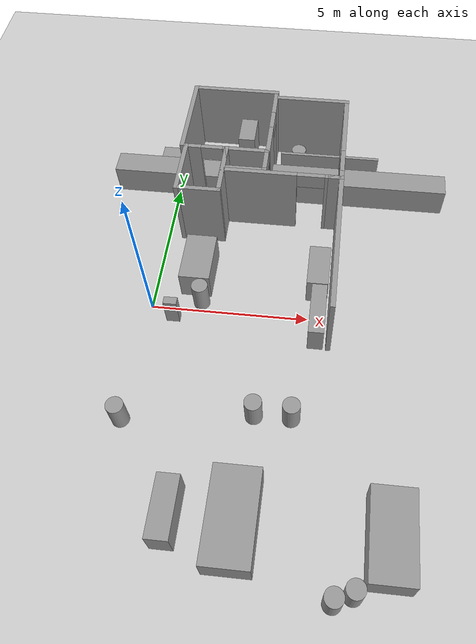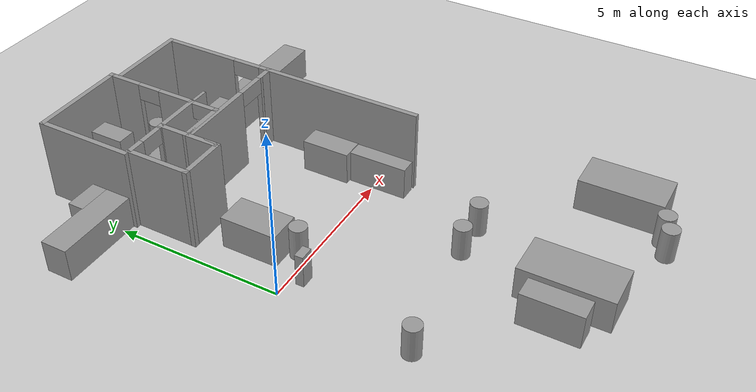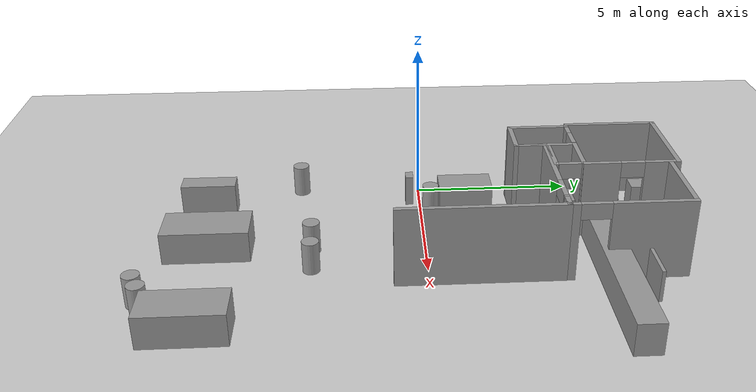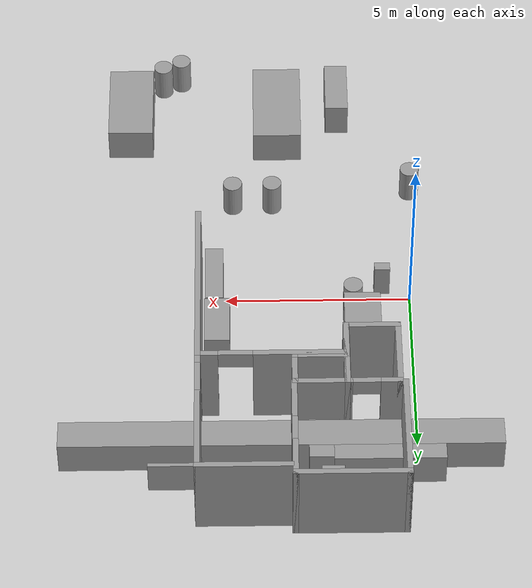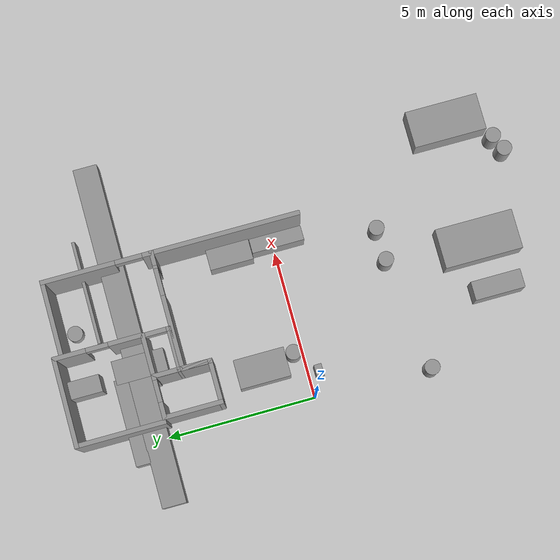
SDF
<sdf version="1.6">
 <world name="default">
  <model name="ground_plane">
   <static>1</static>
   <link name="link">
    <collision name="collision">
     <geometry><plane><normal>0 0 1</normal><size>100 100</size></plane></geometry>
     <surface><friction><ode><mu>100</mu><mu2>50</mu2></ode></friction></surface>
    </collision>
    <visual name="visual">
     <cast_shadows>0</cast_shadows>
     <geometry><plane><normal>0 0 1</normal><size>100 100</size></plane></geometry>
     <material>
      <script><uri>file://media/materials/scripts/gazebo.material</uri><name>Gazebo/Grey</name></script>
     </material>
    </visual>
   </link>
  </model>
  <model name="cma_L5">
   <pose>3.77502 1.45512 0 0 -0 0</pose>
   <link name="Wall_0">
    <collision name="Wall_0_Collision">
     <geometry><box><size>1 0.15 2.5</size></box></geometry>
     <pose>0 0 1.25 0 -0 0</pose>
    </collision>
    <visual name="Wall_0_Visual">
     <pose>0 0 1.25 0 -0 0</pose>
     <geometry><box><size>1 0.15 2.5</size></box></geometry>
     <material>
      <script><uri>file://media/materials/scripts/gazebo.material</uri><name>Gazebo/Grey</name></script>
      <ambient>1 1 1 1</ambient>
     </material>
    </visual>
    <pose>-1.925 2 0 0 -0 1.5708</pose>
   </link>
   <link name="Wall_1">
    <pose>0 2.425 0 0 -0 0</pose>
    <visual name="Wall_1_Visual_0">
     <pose>-0.7525 0 1.25 0 -0 0</pose>
     <geometry><box><size>2.495 0.15 2.5</size></box></geometry>
     <material>
      <script><uri>file://media/materials/scripts/gazebo.material</uri><name>Gazebo/Grey</name></script>
      <ambient>1 1 1 1</ambient>
     </material>
    </visual>
    <collision name="Wall_1_Collision_0">
     <geometry><box><size>2.495 0.15 2.5</size></box></geometry>
     <pose>-0.7525 0 1.25 0 -0 0</pose>
    </collision>
    <visual name="Wall_1_Visual_1">
     <pose>1.6975 0 1.25 0 -0 0</pose>
     <geometry><box><size>0.605 0.15 2.5</size></box></geometry>
     <material>
      <script><uri>file://media/materials/scripts/gazebo.material</uri><name>Gazebo/Grey</name></script>
      <ambient>1 1 1 1</ambient>
     </material>
    </visual>
    <collision name="Wall_1_Collision_1">
     <geometry><box><size>0.605 0.15 2.5</size></box></geometry>
     <pose>1.6975 0 1.25 0 -0 0</pose>
    </collision>
    <visual name="Wall_1_Visual_2">
     <pose>0.945 0 2.25 0 -0 0</pose>
     <geometry><box><size>0.9 0.15 0.5</size></box></geometry>
     <material>
      <script><uri>file://media/materials/scripts/gazebo.material</uri><name>Gazebo/Grey</name></script>
      <ambient>1 1 1 1</ambient>
     </material>
    </visual>
    <collision name="Wall_1_Collision_2">
     <geometry><box><size>0.9 0.15 0.5</size></box></geometry>
     <pose>0.945 0 2.25 0 -0 0</pose>
    </collision>
   </link>
   <link name="Wall_3">
    <collision name="Wall_3_Collision">
     <geometry><box><size>5 0.15 2.5</size></box></geometry>
     <pose>0 0 1.25 0 -0 0</pose>
    </collision>
    <visual name="Wall_3_Visual">
     <pose>0 0 1.25 0 -0 0</pose>
     <geometry><box><size>5 0.15 2.5</size></box></geometry>
     <material>
      <script><uri>file://media/materials/scripts/gazebo.material</uri><name>Gazebo/Grey</name></script>
      <ambient>1 1 1 1</ambient>
     </material>
    </visual>
    <pose>1.925 0 0 0 0 -1.5708</pose>
   </link>
   <static>1</static>
  </model>
  <model name="cma_dispensa">
   <pose>2.52584 4.40119 0 0 -0 0</pose>
   <link name="Wall_5">
    <collision name="Wall_5_Collision">
     <geometry><box><size>1 0.15 2.5</size></box></geometry>
     <pose>0 0 1.25 0 -0 0</pose>
    </collision>
    <visual name="Wall_5_Visual">
     <pose>0 0 1.25 0 -0 0</pose>
     <geometry><box><size>1 0.15 2.5</size></box></geometry>
     <material>
      <script><uri>file://media/materials/scripts/gazebo.material</uri><name>Gazebo/Grey</name></script>
      <ambient>1 1 1 1</ambient>
     </material>
    </visual>
    <pose>-0.675 0 0 0 -0 1.5708</pose>
   </link>
   <link name="Wall_6">
    <collision name="Wall_6_Collision">
     <geometry><box><size>1.5 0.15 2.5</size></box></geometry>
     <pose>0 0 1.25 0 -0 0</pose>
    </collision>
    <visual name="Wall_6_Visual">
     <pose>0 0 1.25 0 -0 0</pose>
     <geometry><box><size>1.5 0.15 2.5</size></box></geometry>
     <material>
      <script><uri>file://media/materials/scripts/gazebo.material</uri><name>Gazebo/Grey</name></script>
      <ambient>1 1 1 1</ambient>
     </material>
    </visual>
    <pose>0 0.425 0 0 -0 0</pose>
   </link>
   <link name="Wall_7">
    <pose>0.675 0 0 0 0 -1.5708</pose>
    <visual name="Wall_7_Visual_0">
     <pose>-0.4275 0 1.25 0 -0 0</pose>
     <geometry><box><size>0.145 0.15 2.5</size></box></geometry>
     <material>
      <script><uri>file://media/materials/scripts/gazebo.material</uri><name>Gazebo/Grey</name></script>
      <ambient>1 1 1 1</ambient>
     </material>
    </visual>
    <collision name="Wall_7_Collision_0">
     <geometry><box><size>0.145 0.15 2.5</size></box></geometry>
     <pose>-0.4275 0 1.25 0 -0 0</pose>
    </collision>
    <visual name="Wall_7_Visual_1">
     <pose>0.4225 0 1.25 0 -0 0</pose>
     <geometry><box><size>0.155 0.15 2.5</size></box></geometry>
     <material>
      <script><uri>file://media/materials/scripts/gazebo.material</uri><name>Gazebo/Grey</name></script>
      <ambient>1 1 1 1</ambient>
     </material>
    </visual>
    <collision name="Wall_7_Collision_1">
     <geometry><box><size>0.155 0.15 2.5</size></box></geometry>
     <pose>0.4225 0 1.25 0 -0 0</pose>
    </collision>
    <visual name="Wall_7_Visual_2">
     <pose>-0.005 0 2.25 0 -0 0</pose>
     <geometry><box><size>0.7 0.15 0.5</size></box></geometry>
     <material>
      <script><uri>file://media/materials/scripts/gazebo.material</uri><name>Gazebo/Grey</name></script>
      <ambient>1 1 1 1</ambient>
     </material>
    </visual>
    <collision name="Wall_7_Collision_2">
     <geometry><box><size>0.7 0.15 0.5</size></box></geometry>
     <pose>-0.005 0 2.25 0 -0 0</pose>
    </collision>
   </link>
   <link name="Wall_8">
    <collision name="Wall_8_Collision">
     <geometry><box><size>1.5 0.15 2.5</size></box></geometry>
     <pose>0 0 1.25 0 -0 0</pose>
    </collision>
    <visual name="Wall_8_Visual">
     <pose>0 0 1.25 0 -0 0</pose>
     <geometry><box><size>1.5 0.15 2.5</size></box></geometry>
     <material>
      <script><uri>file://media/materials/scripts/gazebo.material</uri><name>Gazebo/Grey</name></script>
      <ambient>1 1 1 1</ambient>
     </material>
    </visual>
    <pose>0 -0.425 0 0 -0 3.14159</pose>
   </link>
   <static>1</static>
  </model>
  <model name="cma_banheiro_e">
   <pose>1.18358 3.89879 0 0 -0 0</pose>
   <link name="Wall_10">
    <collision name="Wall_10_Collision">
     <geometry><box><size>1.5 0.15 2.5</size></box></geometry>
     <pose>0 0 1.25 0 -0 0</pose>
    </collision>
    <visual name="Wall_10_Visual">
     <pose>0 0 1.25 0 -0 0</pose>
     <geometry><box><size>1.5 0.15 2.5</size></box></geometry>
     <material>
      <script><uri>file://media/materials/scripts/gazebo.material</uri><name>Gazebo/Grey</name></script>
      <ambient>1 1 1 1</ambient>
     </material>
    </visual>
    <pose>0 -0.925 0 0 -0 3.14159</pose>
   </link>
   <link name="Wall_11">
    <collision name="Wall_11_Collision">
     <geometry><box><size>2 0.15 2.5</size></box></geometry>
     <pose>0 0 1.25 0 -0 0</pose>
    </collision>
    <visual name="Wall_11_Visual">
     <pose>0 0 1.25 0 -0 0</pose>
     <geometry><box><size>2 0.15 2.5</size></box></geometry>
     <material>
      <script><uri>file://media/materials/scripts/gazebo.material</uri><name>Gazebo/Grey</name></script>
      <ambient>1 1 1 1</ambient>
     </material>
    </visual>
    <pose>-0.675 0 0 0 -0 1.5708</pose>
   </link>
   <link name="Wall_12">
    <pose>0 0.925 0 0 -0 0</pose>
    <visual name="Wall_12_Visual_0">
     <pose>-0.4625 0 1.25 0 -0 0</pose>
     <geometry><box><size>0.575 0.15 2.5</size></box></geometry>
     <material>
      <script><uri>file://media/materials/scripts/gazebo.material</uri><name>Gazebo/Grey</name></script>
      <ambient>1 1 1 1</ambient>
     </material>
    </visual>
    <collision name="Wall_12_Collision_0">
     <geometry><box><size>0.575 0.15 2.5</size></box></geometry>
     <pose>-0.4625 0 1.25 0 -0 0</pose>
    </collision>
    <visual name="Wall_12_Visual_1">
     <pose>0.6475 0 1.25 0 -0 0</pose>
     <geometry><box><size>0.205 0.15 2.5</size></box></geometry>
     <material>
      <script><uri>file://media/materials/scripts/gazebo.material</uri><name>Gazebo/Grey</name></script>
      <ambient>1 1 1 1</ambient>
     </material>
    </visual>
    <collision name="Wall_12_Collision_1">
     <geometry><box><size>0.205 0.15 2.5</size></box></geometry>
     <pose>0.6475 0 1.25 0 -0 0</pose>
    </collision>
    <visual name="Wall_12_Visual_2">
     <pose>0.185 0 2.25 0 -0 0</pose>
     <geometry><box><size>0.72 0.15 0.5</size></box></geometry>
     <material>
      <script><uri>file://media/materials/scripts/gazebo.material</uri><name>Gazebo/Grey</name></script>
      <ambient>1 1 1 1</ambient>
     </material>
    </visual>
    <collision name="Wall_12_Collision_2">
     <geometry><box><size>0.72 0.15 0.5</size></box></geometry>
     <pose>0.185 0 2.25 0 -0 0</pose>
    </collision>
   </link>
   <link name="Wall_13">
    <collision name="Wall_13_Collision">
     <geometry><box><size>2 0.15 2.5</size></box></geometry>
     <pose>0 0 1.25 0 -0 0</pose>
    </collision>
    <visual name="Wall_13_Visual">
     <pose>0 0 1.25 0 -0 0</pose>
     <geometry><box><size>2 0.15 2.5</size></box></geometry>
     <material>
      <script><uri>file://media/materials/scripts/gazebo.material</uri><name>Gazebo/Grey</name></script>
      <ambient>1 1 1 1</ambient>
     </material>
    </visual>
    <pose>0.675 0 0 0 0 -1.5708</pose>
   </link>
   <static>1</static>
  </model>
  <model name="cma_qe">
   <pose>1.79922 6.30142 0 0 -0 0</pose>
   <link name="Wall_15">
    <collision name="Wall_15_Collision">
     <geometry><box><size>3 0.15 2.5</size></box></geometry>
     <pose>0 0 1.25 0 -0 0</pose>
    </collision>
    <visual name="Wall_15_Visual">
     <pose>0 0 1.25 0 -0 0</pose>
     <geometry><box><size>3 0.15 2.5</size></box></geometry>
     <material>
      <script><uri>file://media/materials/scripts/gazebo.material</uri><name>Gazebo/Grey</name></script>
      <ambient>1 1 1 1</ambient>
     </material>
    </visual>
    <pose>-1.425 0 0 0 -0 1.5708</pose>
   </link>
   <link name="Wall_16">
    <collision name="Wall_16_Collision">
     <geometry><box><size>3 0.15 2.5</size></box></geometry>
     <pose>0 0 1.25 0 -0 0</pose>
    </collision>
    <visual name="Wall_16_Visual">
     <pose>0 0 1.25 0 -0 0</pose>
     <geometry><box><size>3 0.15 2.5</size></box></geometry>
     <material>
      <script><uri>file://media/materials/scripts/gazebo.material</uri><name>Gazebo/Grey</name></script>
      <ambient>1 1 1 1</ambient>
     </material>
    </visual>
    <pose>0 1.425 0 0 -0 0</pose>
   </link>
   <link name="Wall_17">
    <pose>1.425 0 0 0 0 -1.5708</pose>
    <visual name="Wall_17_Visual_0">
     <pose>-0.945 0 1.25 0 -0 0</pose>
     <geometry><box><size>1.11 0.15 2.5</size></box></geometry>
     <material>
      <script><uri>file://media/materials/scripts/gazebo.material</uri><name>Gazebo/Grey</name></script>
      <ambient>1 1 1 1</ambient>
     </material>
    </visual>
    <collision name="Wall_17_Collision_0">
     <geometry><box><size>1.11 0.15 2.5</size></box></geometry>
     <pose>-0.945 0 1.25 0 -0 0</pose>
    </collision>
    <visual name="Wall_17_Visual_1">
     <pose>0.92 0 1.25 0 -0 0</pose>
     <geometry><box><size>1.16 0.15 2.5</size></box></geometry>
     <material>
      <script><uri>file://media/materials/scripts/gazebo.material</uri><name>Gazebo/Grey</name></script>
      <ambient>1 1 1 1</ambient>
     </material>
    </visual>
    <collision name="Wall_17_Collision_1">
     <geometry><box><size>1.16 0.15 2.5</size></box></geometry>
     <pose>0.92 0 1.25 0 -0 0</pose>
    </collision>
    <visual name="Wall_17_Visual_2">
     <pose>-0.025 0 2.25 0 -0 0</pose>
     <geometry><box><size>0.73 0.15 0.5</size></box></geometry>
     <material>
      <script><uri>file://media/materials/scripts/gazebo.material</uri><name>Gazebo/Grey</name></script>
      <ambient>1 1 1 1</ambient>
     </material>
    </visual>
    <collision name="Wall_17_Collision_2">
     <geometry><box><size>0.73 0.15 0.5</size></box></geometry>
     <pose>-0.025 0 2.25 0 -0 0</pose>
    </collision>
   </link>
   <static>1</static>
  </model>
  <model name="cma_area2">
   <pose>4.52275 5.67862 0 0 -0 0</pose>
   <link name="Wall_23">
    <collision name="Wall_23_Collision">
     <geometry><box><size>2.5 0.15 2.5</size></box></geometry>
     <pose>0 0 1.25 0 -0 0</pose>
    </collision>
    <visual name="Wall_23_Visual">
     <pose>0 0 1.25 0 -0 0</pose>
     <geometry><box><size>2.5 0.15 2.5</size></box></geometry>
     <material>
      <script><uri>file://media/materials/scripts/gazebo.material</uri><name>Gazebo/Grey</name></script>
      <ambient>1 1 1 1</ambient>
     </material>
    </visual>
    <pose>0 1.8 0 0 -0 0</pose>
   </link>
   <link name="Wall_24">
    <pose>1.175 0 0 0 0 -1.5708</pose>
    <visual name="Wall_24_Visual_0">
     <pose>-0.6425 0 1.25 0 -0 0</pose>
     <geometry><box><size>2.465 0.15 2.5</size></box></geometry>
     <material>
      <script><uri>file://media/materials/scripts/gazebo.material</uri><name>Gazebo/Grey</name></script>
      <ambient>1 1 1 1</ambient>
     </material>
    </visual>
    <collision name="Wall_24_Collision_0">
     <geometry><box><size>2.465 0.15 2.5</size></box></geometry>
     <pose>-0.6425 0 1.25 0 -0 0</pose>
    </collision>
    <visual name="Wall_24_Visual_1">
     <pose>1.6825 0 1.25 0 -0 0</pose>
     <geometry><box><size>0.385 0.15 2.5</size></box></geometry>
     <material>
      <script><uri>file://media/materials/scripts/gazebo.material</uri><name>Gazebo/Grey</name></script>
      <ambient>1 1 1 1</ambient>
     </material>
    </visual>
    <collision name="Wall_24_Collision_1">
     <geometry><box><size>0.385 0.15 2.5</size></box></geometry>
     <pose>1.6825 0 1.25 0 -0 0</pose>
    </collision>
    <visual name="Wall_24_Visual_2">
     <pose>1.04 0 2.25 0 -0 0</pose>
     <geometry><box><size>0.9 0.15 0.5</size></box></geometry>
     <material>
      <script><uri>file://media/materials/scripts/gazebo.material</uri><name>Gazebo/Grey</name></script>
      <ambient>1 1 1 1</ambient>
     </material>
    </visual>
    <collision name="Wall_24_Collision_2">
     <geometry><box><size>0.9 0.15 0.5</size></box></geometry>
     <pose>1.04 0 2.25 0 -0 0</pose>
    </collision>
   </link>
   <link name="Wall_25">
    <collision name="Wall_25_Collision">
     <geometry><box><size>0.5 0.15 2.5</size></box></geometry>
     <pose>0 0 1.25 0 -0 0</pose>
    </collision>
    <visual name="Wall_25_Visual">
     <pose>0 0 1.25 0 -0 0</pose>
     <geometry><box><size>0.5 0.15 2.5</size></box></geometry>
     <material>
      <script><uri>file://media/materials/scripts/gazebo.material</uri><name>Gazebo/Grey</name></script>
      <ambient>1 1 1 1</ambient>
     </material>
    </visual>
    <pose>1 -1.8 0 0 -0 3.14159</pose>
   </link>
   <static>1</static>
  </model>
  <model name="cma_picador_0">
   <link name="link_2">
    <pose>-0.7258 -1.69104 0 0 -0 0</pose>
    <inertial>
     <mass>0.104732</mass>
     <inertia>
      <ixx>0.00927906</ixx>
      <ixy>0</ixy>
      <ixz>0</ixz>
      <iyy>0.010243</iyy>
      <iyz>0</iyz>
      <izz>0.00206672</izz>
     </inertia>
    </inertial>
    <visual name="visual">
     <geometry><box><size>0.416688 0.25134 1</size></box></geometry>
     <material>
      <lighting>1</lighting>
      <script><uri>file://media/materials/scripts/gazebo.material</uri><name>Gazebo/Grey</name></script>
      <ambient>0.3 0.3 0.3 1</ambient>
      <diffuse>0.7 0.7 0.7 1</diffuse>
      <specular>0.01 0.01 0.01 1</specular>
      <emissive>0 0 0 1</emissive>
     </material>
    </visual>
    <collision name="collision">
     <geometry><box><size>0.416688 0.25134 1</size></box></geometry>
     <surface>
      <friction>
       <ode><mu>1</mu><mu2>1</mu2><fdir1>0 0 0</fdir1><slip1>0</slip1><slip2>0</slip2></ode>
       <torsional>
        <coefficient>1</coefficient>
        <patch_radius>0</patch_radius>
        <surface_radius>0</surface_radius>
        <use_patch_radius>1</use_patch_radius>
        <ode><slip>0</slip></ode>
       </torsional>
      </friction>
      <bounce><restitution_coefficient>0</restitution_coefficient><threshold>1e+06</threshold></bounce>
      <contact>
       <collide_without_contact>0</collide_without_contact>
       <collide_without_contact_bitmask>1</collide_without_contact_bitmask>
       <collide_bitmask>1</collide_bitmask>
       <ode>
        <soft_cfm>0</soft_cfm>
        <soft_erp>0.2</soft_erp>
        <kp>1e+13</kp>
        <kd>1</kd>
        <max_vel>0.01</max_vel>
        <min_depth>0</min_depth>
       </ode>
       <bullet>
        <split_impulse>1</split_impulse>
        <split_impulse_penetration_threshold>-0.01</split_impulse_penetration_threshold>
        <soft_cfm>0</soft_cfm>
        <soft_erp>0.2</soft_erp>
        <kp>1e+13</kp>
        <kd>1</kd>
       </bullet>
      </contact>
     </surface>
    </collision>
   </link>
   <static>0</static>
   <pose>1.47237 1.35976 0.500002 1e-06 2e-06 0.008786</pose>
  </model>
  <model name="cma_cesto">
   <link name="link_1">
    <pose>-0.329659 -1.55494 0 0 -0 0</pose>
    <inertial>
     <mass>0.267897</mass>
     <inertia>
      <ixx>0.0268102</ixx>
      <ixy>0</ixy>
      <ixz>0</ixz>
      <iyy>0.0268102</iyy>
      <iyz>0</iyz>
      <izz>0.00897111</izz>
     </inertia>
    </inertial>
    <visual name="visual">
     <geometry><cylinder><radius>0.258792</radius><length>1</length></cylinder></geometry>
     <material>
      <lighting>1</lighting>
      <script><uri>file://media/materials/scripts/gazebo.material</uri><name>Gazebo/Grey</name></script>
      <ambient>0.3 0.3 0.3 1</ambient>
      <diffuse>0.7 0.7 0.7 1</diffuse>
      <specular>0.01 0.01 0.01 1</specular>
      <emissive>0 0 0 1</emissive>
     </material>
    </visual>
    <collision name="collision">
     <geometry><cylinder><radius>0.258792</radius><length>1</length></cylinder></geometry>
     <surface>
      <friction>
       <ode><mu>1</mu><mu2>1</mu2><fdir1>0 0 0</fdir1><slip1>0</slip1><slip2>0</slip2></ode>
       <torsional>
        <coefficient>1</coefficient>
        <patch_radius>0</patch_radius>
        <surface_radius>0</surface_radius>
        <use_patch_radius>1</use_patch_radius>
        <ode><slip>0</slip></ode>
       </torsional>
      </friction>
      <bounce><restitution_coefficient>0</restitution_coefficient><threshold>1e+06</threshold></bounce>
      <contact>
       <collide_without_contact>0</collide_without_contact>
       <collide_without_contact_bitmask>1</collide_without_contact_bitmask>
       <collide_bitmask>1</collide_bitmask>
       <ode>
        <soft_cfm>0</soft_cfm>
        <soft_erp>0.2</soft_erp>
        <kp>1e+13</kp>
        <kd>1</kd>
        <max_vel>0.01</max_vel>
        <min_depth>0</min_depth>
       </ode>
       <bullet>
        <split_impulse>1</split_impulse>
        <split_impulse_penetration_threshold>-0.01</split_impulse_penetration_threshold>
        <soft_cfm>0</soft_cfm>
        <soft_erp>0.2</soft_erp>
        <kp>1e+13</kp>
        <kd>1</kd>
       </bullet>
      </contact>
     </surface>
    </collision>
   </link>
   <static>0</static>
   <pose>1.91098 1.85863 0.499992 0 0 -0.013205</pose>
  </model>
  <model name="cma_sofa_2_lugares">
   <link name="link_0">
    <pose>-0.034013 -0.039828 0 0 -0 0</pose>
    <inertial>
     <mass>1.66071</mass>
     <inertia>
      <ixx>0.538183</ixx>
      <ixy>0</ixy>
      <ixz>0</ixz>
      <iyy>0.270519</iyy>
      <iyz>0</iyz>
      <izz>0.531915</izz>
     </inertia>
    </inertial>
    <visual name="visual">
     <geometry><box><size>0.977147 1.69968 1</size></box></geometry>
     <material>
      <lighting>1</lighting>
      <script><uri>file://media/materials/scripts/gazebo.material</uri><name>Gazebo/Grey</name></script>
      <ambient>0.3 0.3 0.3 1</ambient>
      <diffuse>0.7 0.7 0.7 1</diffuse>
      <specular>0.01 0.01 0.01 1</specular>
      <emissive>0 0 0 1</emissive>
     </material>
    </visual>
    <collision name="collision">
     <geometry><box><size>0.977147 1.69968 1</size></box></geometry>
     <surface>
      <friction>
       <ode><mu>1</mu><mu2>1</mu2><fdir1>0 0 0</fdir1><slip1>0</slip1><slip2>0</slip2></ode>
       <torsional>
        <coefficient>1</coefficient>
        <patch_radius>0</patch_radius>
        <surface_radius>0</surface_radius>
        <use_patch_radius>1</use_patch_radius>
        <ode><slip>0</slip></ode>
       </torsional>
      </friction>
      <bounce><restitution_coefficient>0</restitution_coefficient><threshold>1e+06</threshold></bounce>
      <contact>
       <collide_without_contact>0</collide_without_contact>
       <collide_without_contact_bitmask>1</collide_without_contact_bitmask>
       <collide_bitmask>1</collide_bitmask>
       <ode>
        <soft_cfm>0</soft_cfm>
        <soft_erp>0.2</soft_erp>
        <kp>1e+13</kp>
        <kd>1</kd>
        <max_vel>0.01</max_vel>
        <min_depth>0</min_depth>
       </ode>
       <bullet>
        <split_impulse>1</split_impulse>
        <split_impulse_penetration_threshold>-0.01</split_impulse_penetration_threshold>
        <soft_cfm>0</soft_cfm>
        <soft_erp>0.2</soft_erp>
        <kp>1e+13</kp>
        <kd>1</kd>
       </bullet>
      </contact>
     </surface>
    </collision>
   </link>
   <static>0</static>
   <pose>1.36479 1.47304 0.499999 -0 -2e-06 0.000198</pose>
  </model>
  <model name="cma_sofa_ch2">
   <link name="link_0">
    <pose>7.54152 -9.06061 0.5 0 -0 0</pose>
    <inertial>
     <mass>3.05287</mass>
     <inertia><ixx>1.79053</ixx><ixy>0</ixy><ixz>0</ixz><iyy>0.647089</iyy><iyz>0</iyz><izz>1.92881</izz></inertia>
    </inertial>
    <visual name="visual">
     <geometry><box><size>1.24235 2.45729 1</size></box></geometry>
     <material>
      <lighting>1</lighting>
      <script><uri>file://media/materials/scripts/gazebo.material</uri><name>Gazebo/Grey</name></script>
      <ambient>0.3 0.3 0.3 1</ambient>
      <diffuse>0.7 0.7 0.7 1</diffuse>
      <specular>0.01 0.01 0.01 1</specular>
      <emissive>0 0 0 1</emissive>
     </material>
    </visual>
    <collision name="collision">
     <geometry><box><size>1.24235 2.45729 1</size></box></geometry>
     <surface>
      <friction>
       <ode><mu>1</mu><mu2>1</mu2><fdir1>0 0 0</fdir1><slip1>0</slip1><slip2>0</slip2></ode>
       <torsional>
        <coefficient>1</coefficient>
        <patch_radius>0</patch_radius>
        <surface_radius>0</surface_radius>
        <use_patch_radius>1</use_patch_radius>
        <ode><slip>0</slip></ode>
       </torsional>
      </friction>
      <bounce><restitution_coefficient>0</restitution_coefficient><threshold>1e+06</threshold></bounce>
      <contact>
       <collide_without_contact>0</collide_without_contact>
       <collide_without_contact_bitmask>1</collide_without_contact_bitmask>
       <collide_bitmask>1</collide_bitmask>
       <ode>
        <soft_cfm>0</soft_cfm>
        <soft_erp>0.2</soft_erp>
        <kp>1e+13</kp>
        <kd>1</kd>
        <max_vel>0.01</max_vel>
        <min_depth>0</min_depth>
       </ode>
       <bullet>
        <split_impulse>1</split_impulse>
        <split_impulse_penetration_threshold>-0.01</split_impulse_penetration_threshold>
        <soft_cfm>0</soft_cfm>
        <soft_erp>0.2</soft_erp>
        <kp>1e+13</kp>
        <kd>1</kd>
       </bullet>
      </contact>
     </surface>
    </collision>
   </link>
   <model name="cma_armarioL">
    <link name="link_0">
     <pose>3.66226 -6.16735 0.5 0 -0 0</pose>
     <inertial>
      <mass>1.04821</mass>
      <inertia>
       <ixx>0.330873</ixx>
       <ixy>0</ixy>
       <ixz>0</ixz>
       <iyy>0.121777</iyy>
       <iyz>0</iyz>
       <izz>0.277949</izz>
      </inertia>
     </inertial>
     <visual name="visual">
      <geometry><box><size>0.627792 1.66972 1</size></box></geometry>
      <material>
       <lighting>1</lighting>
       <script><uri>file://media/materials/scripts/gazebo.material</uri><name>Gazebo/Grey</name></script>
       <ambient>0.3 0.3 0.3 1</ambient>
       <diffuse>0.7 0.7 0.7 1</diffuse>
       <specular>0.01 0.01 0.01 1</specular>
       <emissive>0 0 0 1</emissive>
      </material>
     </visual>
     <collision name="collision">
      <geometry><box><size>0.627792 1.66972 1</size></box></geometry>
      <surface>
       <friction>
        <ode><mu>1</mu><mu2>1</mu2><fdir1>0 0 0</fdir1><slip1>0</slip1><slip2>0</slip2></ode>
        <torsional>
         <coefficient>1</coefficient>
         <patch_radius>0</patch_radius>
         <surface_radius>0</surface_radius>
         <use_patch_radius>1</use_patch_radius>
         <ode><slip>0</slip></ode>
        </torsional>
       </friction>
       <bounce><restitution_coefficient>0</restitution_coefficient><threshold>1e+06</threshold></bounce>
       <contact>
        <collide_without_contact>0</collide_without_contact>
        <collide_without_contact_bitmask>1</collide_without_contact_bitmask>
        <collide_bitmask>1</collide_bitmask>
        <ode>
         <soft_cfm>0</soft_cfm>
         <soft_erp>0.2</soft_erp>
         <kp>1e+13</kp>
         <kd>1</kd>
         <max_vel>0.01</max_vel>
         <min_depth>0</min_depth>
        </ode>
        <bullet>
         <split_impulse>1</split_impulse>
         <split_impulse_penetration_threshold>-0.01</split_impulse_penetration_threshold>
         <soft_cfm>0</soft_cfm>
         <soft_erp>0.2</soft_erp>
         <kp>1e+13</kp>
         <kd>1</kd>
        </bullet>
       </contact>
      </surface>
     </collision>
    </link>
    <static>0</static>
    <pose>-1.91803 -2.92011 0.5 0 -0 0</pose>
   </model>
   <model name="cma_cesto">
    <link name="link_1">
     <pose>-0.329659 -1.55494 0 0 -0 0</pose>
     <inertial>
      <mass>0.267897</mass>
      <inertia>
       <ixx>0.0268102</ixx>
       <ixy>0</ixy>
       <ixz>0</ixz>
       <iyy>0.0268102</iyy>
       <iyz>0</iyz>
       <izz>0.00897111</izz>
      </inertia>
     </inertial>
     <visual name="visual">
      <geometry><cylinder><radius>0.258792</radius><length>1</length></cylinder></geometry>
      <material>
       <lighting>1</lighting>
       <script><uri>file://media/materials/scripts/gazebo.material</uri><name>Gazebo/Grey</name></script>
       <ambient>0.3 0.3 0.3 1</ambient>
       <diffuse>0.7 0.7 0.7 1</diffuse>
       <specular>0.01 0.01 0.01 1</specular>
       <emissive>0 0 0 1</emissive>
      </material>
     </visual>
     <collision name="collision">
      <geometry><cylinder><radius>0.258792</radius><length>1</length></cylinder></geometry>
      <surface>
       <friction>
        <ode><mu>1</mu><mu2>1</mu2><fdir1>0 0 0</fdir1><slip1>0</slip1><slip2>0</slip2></ode>
        <torsional>
         <coefficient>1</coefficient>
         <patch_radius>0</patch_radius>
         <surface_radius>0</surface_radius>
         <use_patch_radius>1</use_patch_radius>
         <ode><slip>0</slip></ode>
        </torsional>
       </friction>
       <bounce><restitution_coefficient>0</restitution_coefficient><threshold>1e+06</threshold></bounce>
       <contact>
        <collide_without_contact>0</collide_without_contact>
        <collide_without_contact_bitmask>1</collide_without_contact_bitmask>
        <collide_bitmask>1</collide_bitmask>
        <ode>
         <soft_cfm>0</soft_cfm>
         <soft_erp>0.2</soft_erp>
         <kp>1e+13</kp>
         <kd>1</kd>
         <max_vel>0.01</max_vel>
         <min_depth>0</min_depth>
        </ode>
        <bullet>
         <split_impulse>1</split_impulse>
         <split_impulse_penetration_threshold>-0.01</split_impulse_penetration_threshold>
         <soft_cfm>0</soft_cfm>
         <soft_erp>0.2</soft_erp>
         <kp>1e+13</kp>
         <kd>1</kd>
        </bullet>
       </contact>
      </surface>
     </collision>
    </link>
    <static>0</static>
    <pose>6.97935 -8.88509 0.5 0 -0 0</pose>
   </model>
   <model name="cma_cesto_0">
    <link name="link_1">
     <pose>-0.329659 -1.55494 0 0 -0 0</pose>
     <inertial>
      <mass>0.267897</mass>
      <inertia>
       <ixx>0.0268102</ixx>
       <ixy>0</ixy>
       <ixz>0</ixz>
       <iyy>0.0268102</iyy>
       <iyz>0</iyz>
       <izz>0.00897111</izz>
      </inertia>
     </inertial>
     <visual name="visual">
      <geometry><cylinder><radius>0.258792</radius><length>1</length></cylinder></geometry>
      <material>
       <lighting>1</lighting>
       <script><uri>file://media/materials/scripts/gazebo.material</uri><name>Gazebo/Grey</name></script>
       <ambient>0.3 0.3 0.3 1</ambient>
       <diffuse>0.7 0.7 0.7 1</diffuse>
       <specular>0.01 0.01 0.01 1</specular>
       <emissive>0 0 0 1</emissive>
      </material>
     </visual>
     <collision name="collision">
      <geometry><cylinder><radius>0.258792</radius><length>1</length></cylinder></geometry>
      <surface>
       <friction>
        <ode><mu>1</mu><mu2>1</mu2><fdir1>0 0 0</fdir1><slip1>0</slip1><slip2>0</slip2></ode>
        <torsional>
         <coefficient>1</coefficient>
         <patch_radius>0</patch_radius>
         <surface_radius>0</surface_radius>
         <use_patch_radius>1</use_patch_radius>
         <ode><slip>0</slip></ode>
        </torsional>
       </friction>
       <bounce><restitution_coefficient>0</restitution_coefficient><threshold>1e+06</threshold></bounce>
       <contact>
        <collide_without_contact>0</collide_without_contact>
        <collide_without_contact_bitmask>1</collide_without_contact_bitmask>
        <collide_bitmask>1</collide_bitmask>
        <ode>
         <soft_cfm>0</soft_cfm>
         <soft_erp>0.2</soft_erp>
         <kp>1e+13</kp>
         <kd>1</kd>
         <max_vel>0.01</max_vel>
         <min_depth>0</min_depth>
        </ode>
        <bullet>
         <split_impulse>1</split_impulse>
         <split_impulse_penetration_threshold>-0.01</split_impulse_penetration_threshold>
         <soft_cfm>0</soft_cfm>
         <soft_erp>0.2</soft_erp>
         <kp>1e+13</kp>
         <kd>1</kd>
        </bullet>
       </contact>
      </surface>
     </collision>
    </link>
    <static>0</static>
    <pose>6.4663 -9.11922 0.5 0 -0 0</pose>
   </model>
   <model name="cma_cesto_1">
    <link name="link_1">
     <pose>-0.329659 -1.55494 0 0 -0 0</pose>
     <inertial>
      <mass>0.267897</mass>
      <inertia>
       <ixx>0.0268102</ixx>
       <ixy>0</ixy>
       <ixz>0</ixz>
       <iyy>0.0268102</iyy>
       <iyz>0</iyz>
       <izz>0.00897111</izz>
      </inertia>
     </inertial>
     <visual name="visual">
      <geometry><cylinder><radius>0.258792</radius><length>1</length></cylinder></geometry>
      <material>
       <lighting>1</lighting>
       <script><uri>file://media/materials/scripts/gazebo.material</uri><name>Gazebo/Grey</name></script>
       <ambient>0.3 0.3 0.3 1</ambient>
       <diffuse>0.7 0.7 0.7 1</diffuse>
       <specular>0.01 0.01 0.01 1</specular>
       <emissive>0 0 0 1</emissive>
      </material>
     </visual>
     <collision name="collision">
      <geometry><cylinder><radius>0.258792</radius><length>1</length></cylinder></geometry>
      <surface>
       <friction>
        <ode><mu>1</mu><mu2>1</mu2><fdir1>0 0 0</fdir1><slip1>0</slip1><slip2>0</slip2></ode>
        <torsional>
         <coefficient>1</coefficient>
         <patch_radius>0</patch_radius>
         <surface_radius>0</surface_radius>
         <use_patch_radius>1</use_patch_radius>
         <ode><slip>0</slip></ode>
        </torsional>
       </friction>
       <bounce><restitution_coefficient>0</restitution_coefficient><threshold>1e+06</threshold></bounce>
       <contact>
        <collide_without_contact>0</collide_without_contact>
        <collide_without_contact_bitmask>1</collide_without_contact_bitmask>
        <collide_bitmask>1</collide_bitmask>
        <ode>
         <soft_cfm>0</soft_cfm>
         <soft_erp>0.2</soft_erp>
         <kp>1e+13</kp>
         <kd>1</kd>
         <max_vel>0.01</max_vel>
         <min_depth>0</min_depth>
        </ode>
        <bullet>
         <split_impulse>1</split_impulse>
         <split_impulse_penetration_threshold>-0.01</split_impulse_penetration_threshold>
         <soft_cfm>0</soft_cfm>
         <soft_erp>0.2</soft_erp>
         <kp>1e+13</kp>
         <kd>1</kd>
        </bullet>
       </contact>
      </surface>
     </collision>
    </link>
    <static>0</static>
    <pose>0.091229 -4.78918 0.5 0 -0 0</pose>
   </model>
   <model name="cma_cesto_2">
    <link name="link_1">
     <pose>-0.329659 -1.55494 0 0 -0 0</pose>
     <inertial>
      <mass>0.267897</mass>
      <inertia>
       <ixx>0.0268102</ixx>
       <ixy>0</ixy>
       <ixz>0</ixz>
       <iyy>0.0268102</iyy>
       <iyz>0</iyz>
       <izz>0.00897111</izz>
      </inertia>
     </inertial>
     <visual name="visual">
      <geometry><cylinder><radius>0.258792</radius><length>1</length></cylinder></geometry>
      <material>
       <lighting>1</lighting>
       <script><uri>file://media/materials/scripts/gazebo.material</uri><name>Gazebo/Grey</name></script>
       <ambient>0.3 0.3 0.3 1</ambient>
       <diffuse>0.7 0.7 0.7 1</diffuse>
       <specular>0.01 0.01 0.01 1</specular>
       <emissive>0 0 0 1</emissive>
      </material>
     </visual>
     <collision name="collision">
      <geometry><cylinder><radius>0.258792</radius><length>1</length></cylinder></geometry>
      <surface>
       <friction>
        <ode><mu>1</mu><mu2>1</mu2><fdir1>0 0 0</fdir1><slip1>0</slip1><slip2>0</slip2></ode>
        <torsional>
         <coefficient>1</coefficient>
         <patch_radius>0</patch_radius>
         <surface_radius>0</surface_radius>
         <use_patch_radius>1</use_patch_radius>
         <ode><slip>0</slip></ode>
        </torsional>
       </friction>
       <bounce><restitution_coefficient>0</restitution_coefficient><threshold>1e+06</threshold></bounce>
       <contact>
        <collide_without_contact>0</collide_without_contact>
        <collide_without_contact_bitmask>1</collide_without_contact_bitmask>
        <collide_bitmask>1</collide_bitmask>
        <ode>
         <soft_cfm>0</soft_cfm>
         <soft_erp>0.2</soft_erp>
         <kp>1e+13</kp>
         <kd>1</kd>
         <max_vel>0.01</max_vel>
         <min_depth>0</min_depth>
        </ode>
        <bullet>
         <split_impulse>1</split_impulse>
         <split_impulse_penetration_threshold>-0.01</split_impulse_penetration_threshold>
         <soft_cfm>0</soft_cfm>
         <soft_erp>0.2</soft_erp>
         <kp>1e+13</kp>
         <kd>1</kd>
        </bullet>
       </contact>
      </surface>
     </collision>
    </link>
    <static>0</static>
    <pose>5.00434 -4.30015 0.5 0 -0 0</pose>
   </model>
   <model name="cma_cesto_3">
    <link name="link_1">
     <pose>-0.329659 -1.55494 0 0 -0 0</pose>
     <inertial>
      <mass>0.267897</mass>
      <inertia>
       <ixx>0.0268102</ixx>
       <ixy>0</ixy>
       <ixz>0</ixz>
       <iyy>0.0268102</iyy>
       <iyz>0</iyz>
       <izz>0.00897111</izz>
      </inertia>
     </inertial>
     <visual name="visual">
      <geometry><cylinder><radius>0.258792</radius><length>1</length></cylinder></geometry>
      <material>
       <lighting>1</lighting>
       <script><uri>file://media/materials/scripts/gazebo.material</uri><name>Gazebo/Grey</name></script>
       <ambient>0.3 0.3 0.3 1</ambient>
       <diffuse>0.7 0.7 0.7 1</diffuse>
       <specular>0.01 0.01 0.01 1</specular>
       <emissive>0 0 0 1</emissive>
      </material>
     </visual>
     <collision name="collision">
      <geometry><cylinder><radius>0.258792</radius><length>1</length></cylinder></geometry>
      <surface>
       <friction>
        <ode><mu>1</mu><mu2>1</mu2><fdir1>0 0 0</fdir1><slip1>0</slip1><slip2>0</slip2></ode>
        <torsional>
         <coefficient>1</coefficient>
         <patch_radius>0</patch_radius>
         <surface_radius>0</surface_radius>
         <use_patch_radius>1</use_patch_radius>
         <ode><slip>0</slip></ode>
        </torsional>
       </friction>
       <bounce><restitution_coefficient>0</restitution_coefficient><threshold>1e+06</threshold></bounce>
       <contact>
        <collide_without_contact>0</collide_without_contact>
        <collide_without_contact_bitmask>1</collide_without_contact_bitmask>
        <collide_bitmask>1</collide_bitmask>
        <ode>
         <soft_cfm>0</soft_cfm>
         <soft_erp>0.2</soft_erp>
         <kp>1e+13</kp>
         <kd>1</kd>
         <max_vel>0.01</max_vel>
         <min_depth>0</min_depth>
        </ode>
        <bullet>
         <split_impulse>1</split_impulse>
         <split_impulse_penetration_threshold>-0.01</split_impulse_penetration_threshold>
         <soft_cfm>0</soft_cfm>
         <soft_erp>0.2</soft_erp>
         <kp>1e+13</kp>
         <kd>1</kd>
        </bullet>
       </contact>
      </surface>
     </collision>
    </link>
    <static>0</static>
    <pose>3.91768 -4.3154 0.5 0 -0 0</pose>
   </model>
   <model name="cma_sofa_ch1">
    <link name="link_0">
     <pose>-4e-06 5e-06 0 0 -0 0</pose>
     <inertial>
      <mass>3.51192</mass>
      <inertia><ixx>2.30831</ixx><ixy>0</ixy><ixz>0</ixz><iyy>0.816746</iyy><iyz>0</iyz><izz>2.53974</izz></inertia>
     </inertial>
     <visual name="visual">
      <geometry><box><size>1.33823 2.62439 1</size></box></geometry>
      <material>
       <lighting>1</lighting>
       <script><uri>file://media/materials/scripts/gazebo.material</uri><name>Gazebo/Grey</name></script>
       <ambient>0.3 0.3 0.3 1</ambient>
       <diffuse>0.7 0.7 0.7 1</diffuse>
       <specular>0.01 0.01 0.01 1</specular>
       <emissive>0 0 0 1</emissive>
      </material>
     </visual>
     <collision name="collision">
      <geometry><box><size>1.33823 2.62439 1</size></box></geometry>
      <surface>
       <friction>
        <ode><mu>1</mu><mu2>1</mu2><fdir1>0 0 0</fdir1><slip1>0</slip1><slip2>0</slip2></ode>
        <torsional>
         <coefficient>1</coefficient>
         <patch_radius>0</patch_radius>
         <surface_radius>0</surface_radius>
         <use_patch_radius>1</use_patch_radius>
         <ode><slip>0</slip></ode>
        </torsional>
       </friction>
       <bounce><restitution_coefficient>0</restitution_coefficient><threshold>1e+06</threshold></bounce>
       <contact>
        <collide_without_contact>0</collide_without_contact>
        <collide_without_contact_bitmask>1</collide_without_contact_bitmask>
        <collide_bitmask>1</collide_bitmask>
        <ode>
         <soft_cfm>0</soft_cfm>
         <soft_erp>0.2</soft_erp>
         <kp>1e+13</kp>
         <kd>1</kd>
         <max_vel>0.01</max_vel>
         <min_depth>0</min_depth>
        </ode>
        <bullet>
         <split_impulse>1</split_impulse>
         <split_impulse_penetration_threshold>-0.01</split_impulse_penetration_threshold>
         <soft_cfm>0</soft_cfm>
         <soft_erp>0.2</soft_erp>
         <kp>1e+13</kp>
         <kd>1</kd>
        </bullet>
       </contact>
      </surface>
     </collision>
    </link>
    <static>0</static>
    <pose>3.4236 -8.99816 0.5 0 -0 0</pose>
   </model>
   <static>0</static>
   <pose>0.11721 2.42164 0 0 -0 0</pose>
  </model>
  <model name="cma_geladeira">
   <link name="link_2">
    <pose>3e-06 -4e-06 0 0 -0 0</pose>
    <inertial>
     <mass>0.994085</mass>
     <inertia>
      <ixx>0.258405</ixx>
      <ixy>0</ixy>
      <ixz>0</ixz>
      <iyy>0.121468</iyy>
      <iyz>0</iyz>
      <izz>0.214192</izz>
     </inertia>
    </inertial>
    <visual name="visual">
     <geometry><box><size>0.682844 1.45579 1</size></box></geometry>
     <material>
      <lighting>1</lighting>
      <script><uri>file://media/materials/scripts/gazebo.material</uri><name>Gazebo/Grey</name></script>
      <ambient>0.3 0.3 0.3 1</ambient>
      <diffuse>0.7 0.7 0.7 1</diffuse>
      <specular>0.01 0.01 0.01 1</specular>
      <emissive>0 0 0 1</emissive>
     </material>
    </visual>
    <collision name="collision">
     <geometry><box><size>0.682844 1.45579 1</size></box></geometry>
     <surface>
      <friction>
       <ode><mu>1</mu><mu2>1</mu2><fdir1>0 0 0</fdir1><slip1>0</slip1><slip2>0</slip2></ode>
       <torsional>
        <coefficient>1</coefficient>
        <patch_radius>0</patch_radius>
        <surface_radius>0</surface_radius>
        <use_patch_radius>1</use_patch_radius>
        <ode><slip>0</slip></ode>
       </torsional>
      </friction>
      <bounce><restitution_coefficient>0</restitution_coefficient><threshold>1e+06</threshold></bounce>
      <contact>
       <collide_without_contact>0</collide_without_contact>
       <collide_without_contact_bitmask>1</collide_without_contact_bitmask>
       <collide_bitmask>1</collide_bitmask>
       <ode>
        <soft_cfm>0</soft_cfm>
        <soft_erp>0.2</soft_erp>
        <kp>1e+13</kp>
        <kd>1</kd>
        <max_vel>0.01</max_vel>
        <min_depth>0</min_depth>
       </ode>
       <bullet>
        <split_impulse>1</split_impulse>
        <split_impulse_penetration_threshold>-0.01</split_impulse_penetration_threshold>
        <soft_cfm>0</soft_cfm>
        <soft_erp>0.2</soft_erp>
        <kp>1e+13</kp>
        <kd>1</kd>
       </bullet>
      </contact>
     </surface>
    </collision>
   </link>
   <static>0</static>
   <pose>5.21958 1.47717 0.5 0 -0 0</pose>
  </model>
  <model name="cma_armario_coz_190x40cm">
   <link name="link_3">
    <pose>-3e-06 1e-06 0 0 -0 0</pose>
    <inertial>
     <mass>0.848618</mass>
     <inertia>
      <ixx>0.28876</ixx>
      <ixy>0</ixy>
      <ixz>0</ixz>
      <iyy>0.0872359</iyy>
      <iyz>0</iyz>
      <izz>0.234559</izz>
     </inertia>
    </inertial>
    <visual name="visual">
     <geometry><box><size>0.483301 1.75592 1</size></box></geometry>
     <material>
      <lighting>1</lighting>
      <script><uri>file://media/materials/scripts/gazebo.material</uri><name>Gazebo/Grey</name></script>
      <ambient>0.3 0.3 0.3 1</ambient>
      <diffuse>0.7 0.7 0.7 1</diffuse>
      <specular>0.01 0.01 0.01 1</specular>
      <emissive>0 0 0 1</emissive>
     </material>
    </visual>
    <collision name="collision">
     <geometry><box><size>0.483301 1.75592 1</size></box></geometry>
     <surface>
      <friction>
       <ode><mu>1</mu><mu2>1</mu2><fdir1>0 0 0</fdir1><slip1>0</slip1><slip2>0</slip2></ode>
       <torsional>
        <coefficient>1</coefficient>
        <patch_radius>0</patch_radius>
        <surface_radius>0</surface_radius>
        <use_patch_radius>1</use_patch_radius>
        <ode><slip>0</slip></ode>
       </torsional>
      </friction>
      <bounce><restitution_coefficient>0</restitution_coefficient><threshold>1e+06</threshold></bounce>
      <contact>
       <collide_without_contact>0</collide_without_contact>
       <collide_without_contact_bitmask>1</collide_without_contact_bitmask>
       <collide_bitmask>1</collide_bitmask>
       <ode>
        <soft_cfm>0</soft_cfm>
        <soft_erp>0.2</soft_erp>
        <kp>1e+13</kp>
        <kd>1</kd>
        <max_vel>0.01</max_vel>
        <min_depth>0</min_depth>
       </ode>
       <bullet>
        <split_impulse>1</split_impulse>
        <split_impulse_penetration_threshold>-0.01</split_impulse_penetration_threshold>
        <soft_cfm>0</soft_cfm>
        <soft_erp>0.2</soft_erp>
        <kp>1e+13</kp>
        <kd>1</kd>
       </bullet>
      </contact>
     </surface>
    </collision>
   </link>
   <static>0</static>
   <pose>5.29765 -0.147685 0.5 0 -0 0</pose>
  </model>
  <model name="unit_box_0">
   <pose>5.25476 6.3315 0.5 0 -0 0</pose>
   <link name="link">
    <inertial>
     <mass>1</mass>
     <inertia>
      <ixx>0.166667</ixx>
      <ixy>0</ixy>
      <ixz>0</ixz>
      <iyy>0.166667</iyy>
      <iyz>0</iyz>
      <izz>0.166667</izz>
     </inertia>
    </inertial>
    <collision name="collision"><geometry><box><size>3.47349 0.105866 1</size></box></geometry></collision>
    <visual name="visual">
     <geometry><box><size>3.47349 0.105866 1</size></box></geometry>
     <material>
      <script><name>Gazebo/Grey</name><uri>file://media/materials/scripts/gazebo.material</uri></script>
     </material>
    </visual>
   </link>
  </model>
  <model name="cma_cesto_1">
   <link name="link_1">
    <pose>-0.329659 -1.55494 0 0 -0 0</pose>
    <inertial>
     <mass>0.267897</mass>
     <inertia>
      <ixx>0.0268102</ixx>
      <ixy>0</ixy>
      <ixz>0</ixz>
      <iyy>0.0268102</iyy>
      <iyz>0</iyz>
      <izz>0.00897111</izz>
     </inertia>
    </inertial>
    <visual name="visual">
     <geometry><cylinder><radius>0.258792</radius><length>1</length></cylinder></geometry>
     <material>
      <lighting>1</lighting>
      <script><uri>file://media/materials/scripts/gazebo.material</uri><name>Gazebo/Grey</name></script>
      <ambient>0.3 0.3 0.3 1</ambient>
      <diffuse>0.7 0.7 0.7 1</diffuse>
      <specular>0.01 0.01 0.01 1</specular>
      <emissive>0 0 0 1</emissive>
     </material>
    </visual>
    <collision name="collision">
     <geometry><cylinder><radius>0.258792</radius><length>1</length></cylinder></geometry>
     <surface>
      <friction>
       <ode><mu>1</mu><mu2>1</mu2><fdir1>0 0 0</fdir1><slip1>0</slip1><slip2>0</slip2></ode>
       <torsional>
        <coefficient>1</coefficient>
        <patch_radius>0</patch_radius>
        <surface_radius>0</surface_radius>
        <use_patch_radius>1</use_patch_radius>
        <ode><slip>0</slip></ode>
       </torsional>
      </friction>
      <bounce><restitution_coefficient>0</restitution_coefficient><threshold>1e+06</threshold></bounce>
      <contact>
       <collide_without_contact>0</collide_without_contact>
       <collide_without_contact_bitmask>1</collide_without_contact_bitmask>
       <collide_bitmask>1</collide_bitmask>
       <ode>
        <soft_cfm>0</soft_cfm>
        <soft_erp>0.2</soft_erp>
        <kp>1e+13</kp>
        <kd>1</kd>
        <max_vel>0.01</max_vel>
        <min_depth>0</min_depth>
       </ode>
       <bullet>
        <split_impulse>1</split_impulse>
        <split_impulse_penetration_threshold>-0.01</split_impulse_penetration_threshold>
        <soft_cfm>0</soft_cfm>
        <soft_erp>0.2</soft_erp>
        <kp>1e+13</kp>
        <kd>1</kd>
       </bullet>
      </contact>
     </surface>
    </collision>
   </link>
   <static>0</static>
   <pose>4.44162 8.617 0 0 -0 0</pose>
  </model>
  <model name="unit_box_1">
   <pose>3.55912 5.32893 0.5 0 -0 0</pose>
   <link name="link">
    <inertial>
     <mass>1</mass>
     <inertia>
      <ixx>0.166667</ixx>
      <ixy>0</ixy>
      <ixz>0</ixz>
      <iyy>0.166667</iyy>
      <iyz>0</iyz>
      <izz>0.166667</izz>
     </inertia>
    </inertial>
    <collision name="collision"><geometry><box><size>11.5241 0.808599 1</size></box></geometry></collision>
    <visual name="visual">
     <geometry><box><size>11.5241 0.808599 1</size></box></geometry>
     <material>
      <script><name>Gazebo/Grey</name><uri>file://media/materials/scripts/gazebo.material</uri></script>
     </material>
    </visual>
   </link>
  </model>
  <model name="unit_box_2">
   <pose>2.44356 5.25354 0.5 0 -0 0</pose>
   <link name="link">
    <inertial>
     <mass>1</mass>
     <inertia>
      <ixx>0.166667</ixx>
      <ixy>0</ixy>
      <ixz>0</ixz>
      <iyy>0.166667</iyy>
      <iyz>0</iyz>
      <izz>0.166667</izz>
     </inertia>
    </inertial>
    <collision name="collision"><geometry><box><size>0.803189 1.74538 1</size></box></geometry></collision>
    <visual name="visual">
     <geometry><box><size>0.803189 1.74538 1</size></box></geometry>
     <material>
      <script><name>Gazebo/Grey</name><uri>file://media/materials/scripts/gazebo.material</uri></script>
     </material>
    </visual>
   </link>
  </model>
  <model name="unit_box_3">
   <pose>0.763071 5.95274 0.5 0 -0 0</pose>
   <link name="link">
    <inertial>
     <mass>1</mass>
     <inertia>
      <ixx>0.166667</ixx>
      <ixy>0</ixy>
      <ixz>0</ixz>
      <iyy>0.166667</iyy>
      <iyz>0</iyz>
      <izz>0.166667</izz>
     </inertia>
    </inertial>
    <collision name="collision"><geometry><box><size>2.88326 0.487053 1</size></box></geometry></collision>
    <visual name="visual">
     <geometry><box><size>2.88326 0.487053 1</size></box></geometry>
     <material>
      <script><name>Gazebo/Grey</name><uri>file://media/materials/scripts/gazebo.material</uri></script>
     </material>
    </visual>
   </link>
  </model>
  <model name="unit_box_4">
   <pose>2.24542 7.18128 0.5 0 -0 0</pose>
   <link name="link">
    <inertial>
     <mass>1</mass>
     <inertia>
      <ixx>0.166667</ixx>
      <ixy>0</ixy>
      <ixz>0</ixz>
      <iyy>0.166667</iyy>
      <iyz>0</iyz>
      <izz>0.166667</izz>
     </inertia>
    </inertial>
    <collision name="collision"><geometry><box><size>0.580705 1.17451 1.50197</size></box></geometry></collision>
    <visual name="visual">
     <geometry><box><size>0.580705 1.17451 1.50197</size></box></geometry>
     <material>
      <script><name>Gazebo/Grey</name><uri>file://media/materials/scripts/gazebo.material</uri></script>
     </material>
    </visual>
   </link>
  </model>
 </world>
</sdf>
